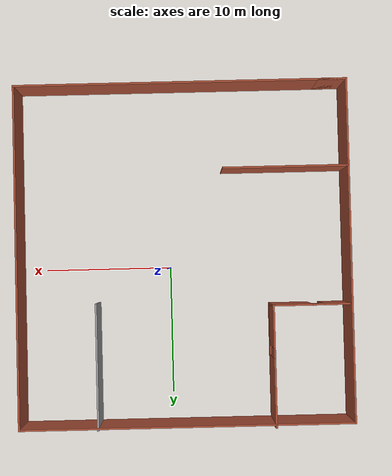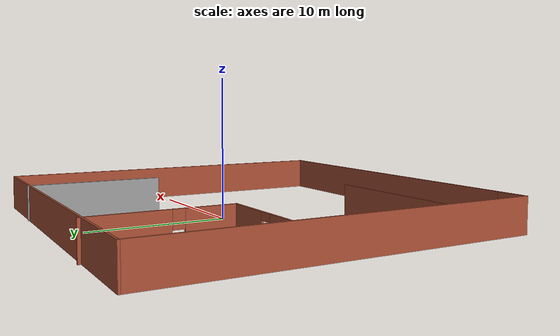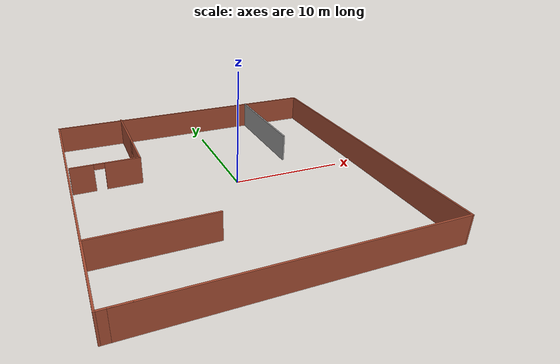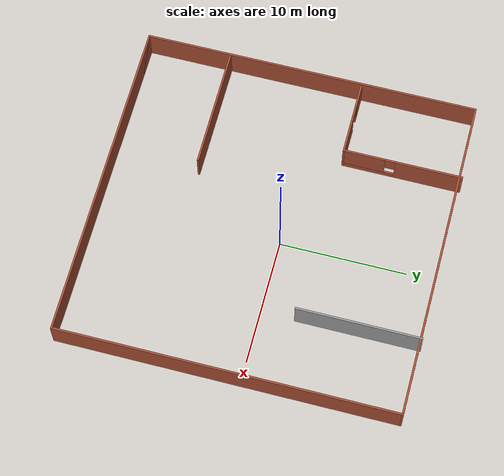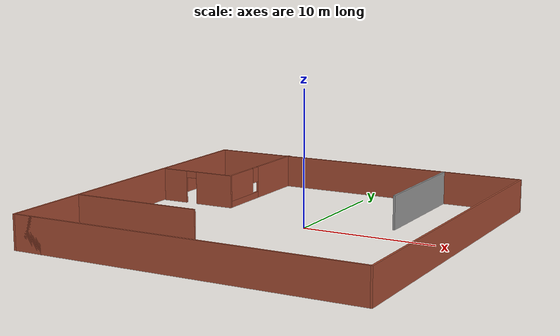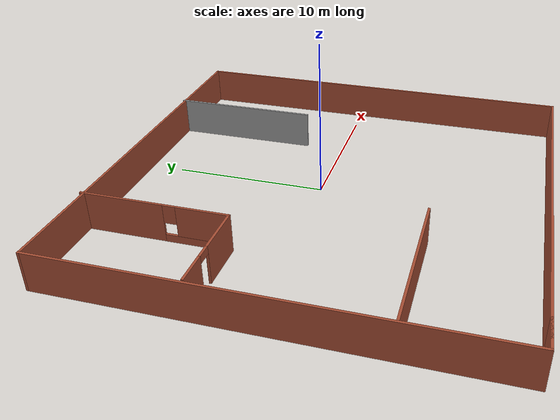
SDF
<?xml version='1.0'?>
<sdf version='1.7'>
  <model name='my.world'>
    <pose>-1.05111 -0.990093 0 0 -0 0</pose>
    <link name='Wall_12'>
      <collision name='Wall_12_Collision'>
        <geometry>
          <box>
            <size>25.25 0.15 2.5</size>
          </box>
        </geometry>
        <pose>0 0 1.25 0 -0 0</pose>
      </collision>
      <visual name='Wall_12_Visual'>
        <pose>0 0 1.25 0 -0 0</pose>
        <geometry>
          <box>
            <size>25.25 0.15 2.5</size>
          </box>
        </geometry>
        <material>
          <script>
            <uri>file://media/materials/scripts/gazebo.material</uri>
            <name>Gazebo/Bricks</name>
          </script>
          <ambient>1 1 1 1</ambient>
        </material>
        <meta>
          <layer>0</layer>
        </meta>
      </visual>
      <pose>0.375 -13.4013 0 0 -0 0</pose>
    </link>
    <link name='Wall_13'>
      <collision name='Wall_13_Collision'>
        <geometry>
          <box>
            <size>26.75 0.15 2.5</size>
          </box>
        </geometry>
        <pose>0 0 1.25 0 -0 0</pose>
      </collision>
      <visual name='Wall_13_Visual'>
        <pose>0 0 1.25 0 -0 0</pose>
        <geometry>
          <box>
            <size>26.75 0.15 2.5</size>
          </box>
        </geometry>
        <material>
          <script>
            <uri>file://media/materials/scripts/gazebo.material</uri>
            <name>Gazebo/Bricks</name>
          </script>
          <ambient>1 1 1 1</ambient>
        </material>
        <meta>
          <layer>0</layer>
        </meta>
      </visual>
      <pose>12.925 -0.101338 0 0 -0 1.5708</pose>
    </link>
    <link name='Wall_14'>
      <collision name='Wall_14_Collision'>
        <geometry>
          <box>
            <size>26 0.15 2.5</size>
          </box>
        </geometry>
        <pose>0 0 1.25 0 -0 0</pose>
      </collision>
      <visual name='Wall_14_Visual'>
        <pose>0 0 1.25 0 -0 0</pose>
        <geometry>
          <box>
            <size>26 0.15 2.5</size>
          </box>
        </geometry>
        <material>
          <script>
            <uri>file://media/materials/scripts/gazebo.material</uri>
            <name>Gazebo/Bricks</name>
          </script>
          <ambient>1 1 1 1</ambient>
        </material>
        <meta>
          <layer>0</layer>
        </meta>
      </visual>
      <pose>-0 13.1987 0 0 -0 3.14159</pose>
    </link>
    <link name='Wall_15'>
      <collision name='Wall_15_Collision'>
        <geometry>
          <box>
            <size>26.75 0.15 2.5</size>
          </box>
        </geometry>
        <pose>0 0 1.25 0 -0 0</pose>
      </collision>
      <visual name='Wall_15_Visual'>
        <pose>0 0 1.25 0 -0 0</pose>
        <geometry>
          <box>
            <size>26.75 0.15 2.5</size>
          </box>
        </geometry>
        <material>
          <script>
            <uri>file://media/materials/scripts/gazebo.material</uri>
            <name>Gazebo/Bricks</name>
          </script>
          <ambient>1 1 1 1</ambient>
        </material>
        <meta>
          <layer>0</layer>
        </meta>
      </visual>
      <pose>-12.925 -0.101338 0 0 -0 -1.5708</pose>
    </link>
    <link name='Wall_16'>
      <collision name='Wall_16_Collision'>
        <geometry>
          <box>
            <size>2.25 0.15 2.5</size>
          </box>
        </geometry>
        <pose>0 0 1.25 0 -0 0</pose>
      </collision>
      <visual name='Wall_16_Visual'>
        <pose>0 0 1.25 0 -0 0</pose>
        <geometry>
          <box>
            <size>2.25 0.15 2.5</size>
          </box>
        </geometry>
        <material>
          <script>
            <uri>file://media/materials/scripts/gazebo.material</uri>
            <name>Gazebo/Bricks</name>
          </script>
          <ambient>1 1 1 1</ambient>
        </material>
        <meta>
          <layer>0</layer>
        </meta>
      </visual>
      <pose>-11.875 -13.4013 0 0 -0 0</pose>
    </link>
    <link name='Wall_18'>
      <pose>-6.84868 8.72634 0 0 -0 -1.5708</pose>
      <visual name='Wall_18_Visual_0'>
        <pose>-2.07687 0 1.25 0 -0 0</pose>
        <geometry>
          <box>
            <size>5.34626 0.15 2.5</size>
          </box>
        </geometry>
        <material>
          <script>
            <uri>file://media/materials/scripts/gazebo.material</uri>
            <name>Gazebo/Bricks</name>
          </script>
          <ambient>0.760784 0.662745 0.627451 1</ambient>
        </material>
        <meta>
          <layer>0</layer>
        </meta>
      </visual>
      <collision name='Wall_18_Collision_0'>
        <geometry>
          <box>
            <size>5.34626 0.15 2.5</size>
          </box>
        </geometry>
        <pose>-2.07687 0 1.25 0 -0 0</pose>
      </collision>
      <visual name='Wall_18_Visual_1'>
        <pose>2.67313 0 0.25 0 -0 0</pose>
        <geometry>
          <box>
            <size>4.15374 0.15 0.5</size>
          </box>
        </geometry>
        <material>
          <script>
            <uri>file://media/materials/scripts/gazebo.material</uri>
            <name>Gazebo/Bricks</name>
          </script>
          <ambient>0.760784 0.662745 0.627451 1</ambient>
        </material>
        <meta>
          <layer>0</layer>
        </meta>
      </visual>
      <collision name='Wall_18_Collision_1'>
        <geometry>
          <box>
            <size>4.15374 0.15 0.5</size>
          </box>
        </geometry>
        <pose>2.67313 0 0.25 0 -0 0</pose>
      </collision>
      <visual name='Wall_18_Visual_2'>
        <pose>3.07313 0 1.5 0 -0 0</pose>
        <geometry>
          <box>
            <size>3.35373 0.15 2</size>
          </box>
        </geometry>
        <material>
          <script>
            <uri>file://media/materials/scripts/gazebo.material</uri>
            <name>Gazebo/Bricks</name>
          </script>
          <ambient>0.760784 0.662745 0.627451 1</ambient>
        </material>
        <meta>
          <layer>0</layer>
        </meta>
      </visual>
      <collision name='Wall_18_Collision_2'>
        <geometry>
          <box>
            <size>3.35373 0.15 2</size>
          </box>
        </geometry>
        <pose>3.07313 0 1.5 0 -0 0</pose>
      </collision>
      <visual name='Wall_18_Visual_3'>
        <pose>0.996265 0 1.9 0 -0 0</pose>
        <geometry>
          <box>
            <size>0.8 0.15 1.2</size>
          </box>
        </geometry>
        <material>
          <script>
            <uri>file://media/materials/scripts/gazebo.material</uri>
            <name>Gazebo/Bricks</name>
          </script>
          <ambient>0.760784 0.662745 0.627451 1</ambient>
        </material>
        <meta>
          <layer>0</layer>
        </meta>
      </visual>
      <collision name='Wall_18_Collision_3'>
        <geometry>
          <box>
            <size>0.8 0.15 1.2</size>
          </box>
        </geometry>
        <pose>0.996265 0 1.9 0 -0 0</pose>
      </collision>
    </link>
    <link name='Wall_19'>
      <pose>-9.77368 4.05134 0 0 -0 3.14159</pose>
      <visual name='Wall_19_Visual_0'>
        <pose>-1.44867 0 1.25 0 -0 0</pose>
        <geometry>
          <box>
            <size>3.10266 0.15 2.5</size>
          </box>
        </geometry>
        <material>
          <script>
            <uri>file://media/materials/scripts/gazebo.material</uri>
            <name>Gazebo/Bricks</name>
          </script>
          <ambient>0.760784 0.662745 0.627451 1</ambient>
        </material>
        <meta>
          <layer>0</layer>
        </meta>
      </visual>
      <collision name='Wall_19_Collision_0'>
        <geometry>
          <box>
            <size>3.10266 0.15 2.5</size>
          </box>
        </geometry>
        <pose>-1.44867 0 1.25 0 -0 0</pose>
      </collision>
      <visual name='Wall_19_Visual_1'>
        <pose>2.00133 0 1.25 0 -0 0</pose>
        <geometry>
          <box>
            <size>1.99734 0.15 2.5</size>
          </box>
        </geometry>
        <material>
          <script>
            <uri>file://media/materials/scripts/gazebo.material</uri>
            <name>Gazebo/Bricks</name>
          </script>
          <ambient>0.760784 0.662745 0.627451 1</ambient>
        </material>
        <meta>
          <layer>0</layer>
        </meta>
      </visual>
      <collision name='Wall_19_Collision_1'>
        <geometry>
          <box>
            <size>1.99734 0.15 2.5</size>
          </box>
        </geometry>
        <pose>2.00133 0 1.25 0 -0 0</pose>
      </collision>
      <visual name='Wall_19_Visual_2'>
        <pose>0.552663 0 2.25 0 -0 0</pose>
        <geometry>
          <box>
            <size>0.9 0.15 0.5</size>
          </box>
        </geometry>
        <material>
          <script>
            <uri>file://media/materials/scripts/gazebo.material</uri>
            <name>Gazebo/Bricks</name>
          </script>
          <ambient>0.760784 0.662745 0.627451 1</ambient>
        </material>
        <meta>
          <layer>0</layer>
        </meta>
      </visual>
      <collision name='Wall_19_Collision_2'>
        <geometry>
          <box>
            <size>0.9 0.15 0.5</size>
          </box>
        </geometry>
        <pose>0.552663 0 2.25 0 -0 0</pose>
      </collision>
    </link>
    <link name='Wall_21'>
      <collision name='Wall_21_Collision'>
        <geometry>
          <box>
            <size>9.75 0.15 2.5</size>
          </box>
        </geometry>
        <pose>0 0 1.25 0 -0 0</pose>
      </collision>
      <visual name='Wall_21_Visual'>
        <pose>0 0 1.25 0 -0 0</pose>
        <geometry>
          <box>
            <size>9.75 0.15 2.5</size>
          </box>
        </geometry>
        <material>
          <script>
            <uri>file://media/materials/scripts/gazebo.material</uri>
            <name>Gazebo/Bricks</name>
          </script>
          <ambient>1 1 1 1</ambient>
        </material>
        <meta>
          <layer>0</layer>
        </meta>
      </visual>
      <pose>-8.04096 -6.6621 0 0 -0 0</pose>
    </link>
    <link name='Wall_23'>
      <collision name='Wall_23_Collision'>
        <geometry>
          <box>
            <size>9.75 0.15 2.5</size>
          </box>
        </geometry>
        <pose>0 0 1.25 0 -0 0</pose>
      </collision>
      <visual name='Wall_23_Visual'>
        <pose>0 0 1.25 0 -0 0</pose>
        <geometry>
          <box>
            <size>9.75 0.15 2.5</size>
          </box>
        </geometry>
        <material>
          <script>
            <uri>file://media/materials/scripts/gazebo.material</uri>
            <name>Gazebo/Grey</name>
          </script>
          <ambient>0 0 0 1</ambient>
        </material>
        <meta>
          <layer>0</layer>
        </meta>
      </visual>
      <pose>6.84796 8.49433 0 0 -0 -1.5708</pose>
    </link>
    <static>1</static>
  </model>
</sdf>
